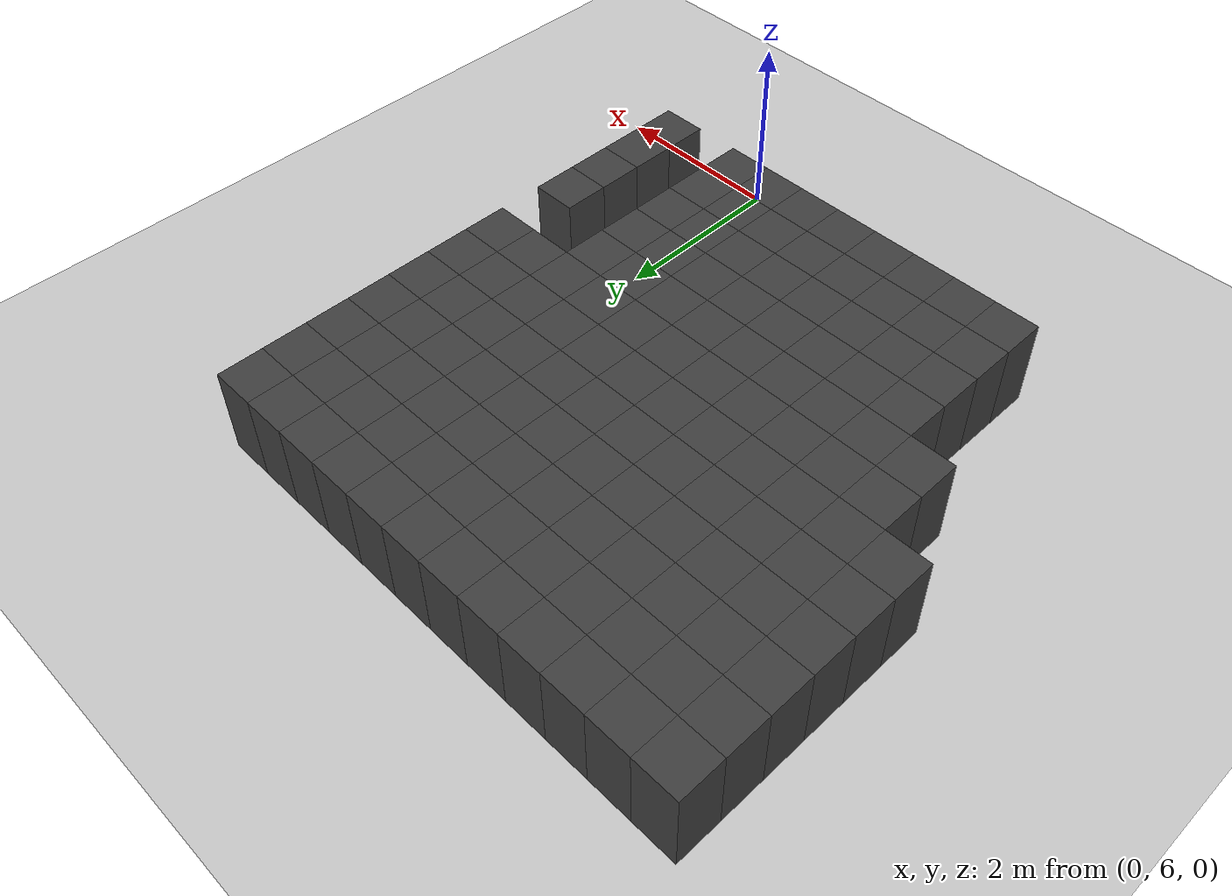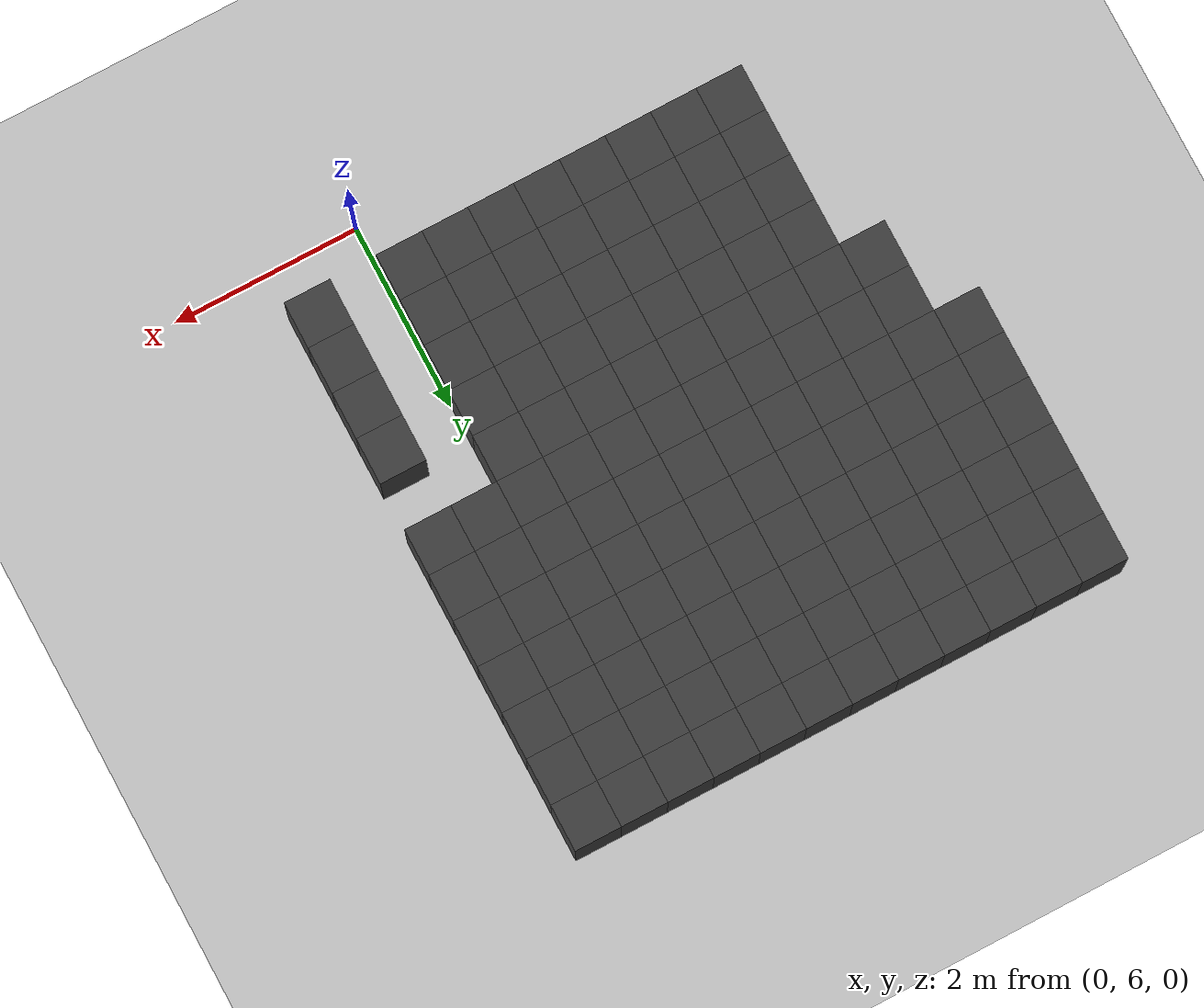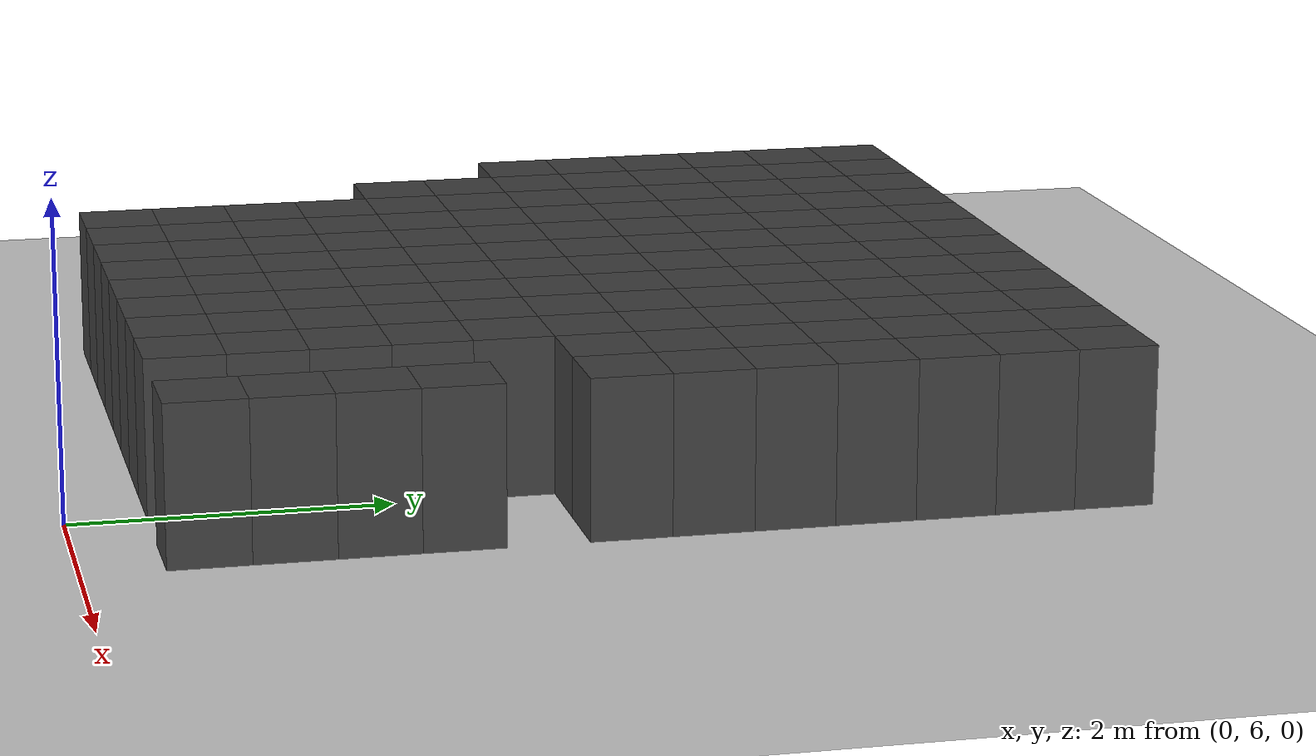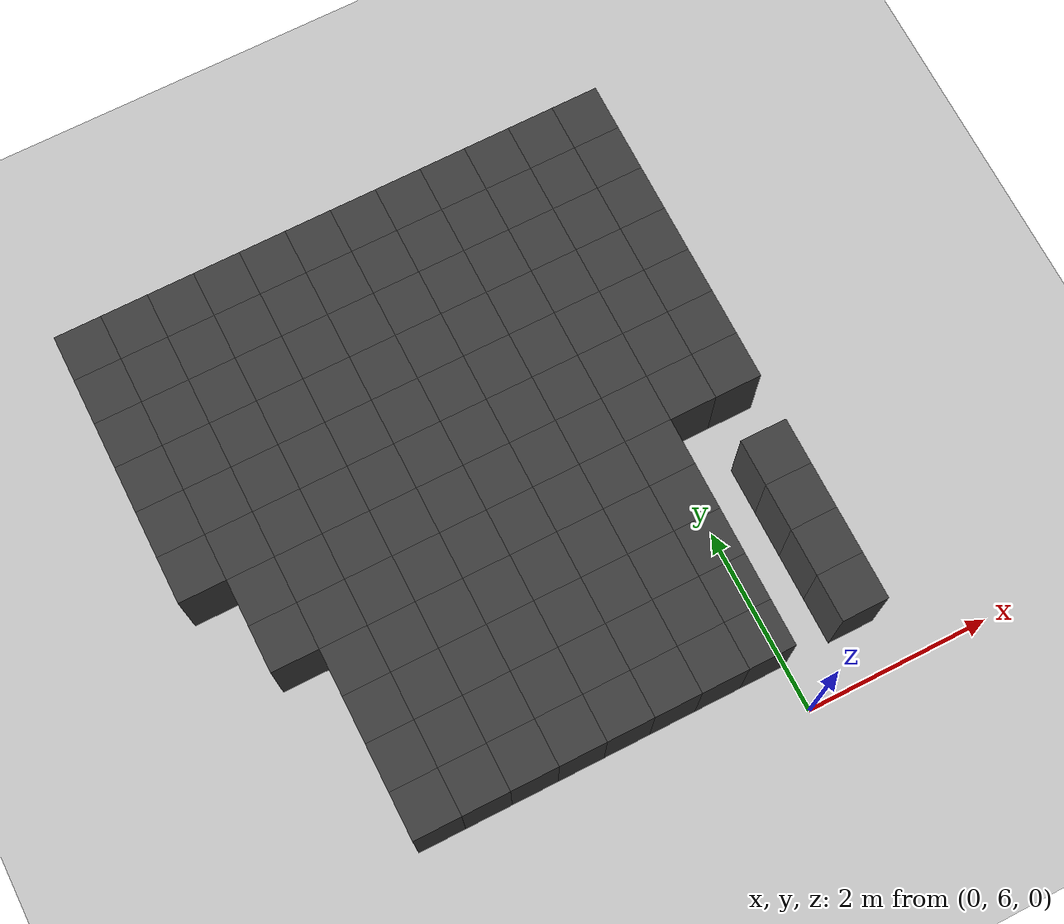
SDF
<sdf version="1.7">
 <world name="map_14980">
  <model name="ground_plane">
   <static>true</static>
   <link name="link">
    <collision name="collision">
     <geometry><plane><normal>0 0 1</normal><size>200 200</size></plane></geometry>
    </collision>
    <visual name="visual">
     <geometry><plane><normal>0 0 1</normal><size>200 200</size></plane></geometry>
     <material><ambient>0.8 0.8 0.8 1</ambient><diffuse>0.8 0.8 0.8 1</diffuse></material>
    </visual>
   </link>
  </model>
  <model name="maze_environment">
   <static>true</static>
   <link name="wall_15">
    <pose>-4.750 12.250 0.500 0 0 0</pose>
    <collision name="col"><geometry><box><size>0.5 0.5 1.0</size></box></geometry></collision>
    <visual name="vis">
     <geometry><box><size>0.5 0.5 1.0</size></box></geometry>
     <material><ambient>0.15 0.15 0.15 1</ambient><diffuse>0.25 0.25 0.25 1</diffuse></material>
    </visual>
   </link>
   <link name="wall_16">
    <pose>-4.250 12.250 0.500 0 0 0</pose>
    <collision name="col"><geometry><box><size>0.5 0.5 1.0</size></box></geometry></collision>
    <visual name="vis">
     <geometry><box><size>0.5 0.5 1.0</size></box></geometry>
     <material><ambient>0.15 0.15 0.15 1</ambient><diffuse>0.25 0.25 0.25 1</diffuse></material>
    </visual>
   </link>
   <link name="wall_17">
    <pose>-3.750 12.250 0.500 0 0 0</pose>
    <collision name="col"><geometry><box><size>0.5 0.5 1.0</size></box></geometry></collision>
    <visual name="vis">
     <geometry><box><size>0.5 0.5 1.0</size></box></geometry>
     <material><ambient>0.15 0.15 0.15 1</ambient><diffuse>0.25 0.25 0.25 1</diffuse></material>
    </visual>
   </link>
   <link name="wall_18">
    <pose>-3.250 12.250 0.500 0 0 0</pose>
    <collision name="col"><geometry><box><size>0.5 0.5 1.0</size></box></geometry></collision>
    <visual name="vis">
     <geometry><box><size>0.5 0.5 1.0</size></box></geometry>
     <material><ambient>0.15 0.15 0.15 1</ambient><diffuse>0.25 0.25 0.25 1</diffuse></material>
    </visual>
   </link>
   <link name="wall_19">
    <pose>-2.750 12.250 0.500 0 0 0</pose>
    <collision name="col"><geometry><box><size>0.5 0.5 1.0</size></box></geometry></collision>
    <visual name="vis">
     <geometry><box><size>0.5 0.5 1.0</size></box></geometry>
     <material><ambient>0.15 0.15 0.15 1</ambient><diffuse>0.25 0.25 0.25 1</diffuse></material>
    </visual>
   </link>
   <link name="wall_20">
    <pose>-2.250 12.250 0.500 0 0 0</pose>
    <collision name="col"><geometry><box><size>0.5 0.5 1.0</size></box></geometry></collision>
    <visual name="vis">
     <geometry><box><size>0.5 0.5 1.0</size></box></geometry>
     <material><ambient>0.15 0.15 0.15 1</ambient><diffuse>0.25 0.25 0.25 1</diffuse></material>
    </visual>
   </link>
   <link name="wall_21">
    <pose>-1.750 12.250 0.500 0 0 0</pose>
    <collision name="col"><geometry><box><size>0.5 0.5 1.0</size></box></geometry></collision>
    <visual name="vis">
     <geometry><box><size>0.5 0.5 1.0</size></box></geometry>
     <material><ambient>0.15 0.15 0.15 1</ambient><diffuse>0.25 0.25 0.25 1</diffuse></material>
    </visual>
   </link>
   <link name="wall_22">
    <pose>-1.250 12.250 0.500 0 0 0</pose>
    <collision name="col"><geometry><box><size>0.5 0.5 1.0</size></box></geometry></collision>
    <visual name="vis">
     <geometry><box><size>0.5 0.5 1.0</size></box></geometry>
     <material><ambient>0.15 0.15 0.15 1</ambient><diffuse>0.25 0.25 0.25 1</diffuse></material>
    </visual>
   </link>
   <link name="wall_23">
    <pose>-0.750 12.250 0.500 0 0 0</pose>
    <collision name="col"><geometry><box><size>0.5 0.5 1.0</size></box></geometry></collision>
    <visual name="vis">
     <geometry><box><size>0.5 0.5 1.0</size></box></geometry>
     <material><ambient>0.15 0.15 0.15 1</ambient><diffuse>0.25 0.25 0.25 1</diffuse></material>
    </visual>
   </link>
   <link name="wall_24">
    <pose>-0.250 12.250 0.500 0 0 0</pose>
    <collision name="col"><geometry><box><size>0.5 0.5 1.0</size></box></geometry></collision>
    <visual name="vis">
     <geometry><box><size>0.5 0.5 1.0</size></box></geometry>
     <material><ambient>0.15 0.15 0.15 1</ambient><diffuse>0.25 0.25 0.25 1</diffuse></material>
    </visual>
   </link>
   <link name="wall_25">
    <pose>0.250 12.250 0.500 0 0 0</pose>
    <collision name="col"><geometry><box><size>0.5 0.5 1.0</size></box></geometry></collision>
    <visual name="vis">
     <geometry><box><size>0.5 0.5 1.0</size></box></geometry>
     <material><ambient>0.15 0.15 0.15 1</ambient><diffuse>0.25 0.25 0.25 1</diffuse></material>
    </visual>
   </link>
   <link name="wall_26">
    <pose>0.750 12.250 0.500 0 0 0</pose>
    <collision name="col"><geometry><box><size>0.5 0.5 1.0</size></box></geometry></collision>
    <visual name="vis">
     <geometry><box><size>0.5 0.5 1.0</size></box></geometry>
     <material><ambient>0.15 0.15 0.15 1</ambient><diffuse>0.25 0.25 0.25 1</diffuse></material>
    </visual>
   </link>
   <link name="wall_62">
    <pose>-4.750 11.750 0.500 0 0 0</pose>
    <collision name="col"><geometry><box><size>0.5 0.5 1.0</size></box></geometry></collision>
    <visual name="vis">
     <geometry><box><size>0.5 0.5 1.0</size></box></geometry>
     <material><ambient>0.15 0.15 0.15 1</ambient><diffuse>0.25 0.25 0.25 1</diffuse></material>
    </visual>
   </link>
   <link name="wall_63">
    <pose>-4.250 11.750 0.500 0 0 0</pose>
    <collision name="col"><geometry><box><size>0.5 0.5 1.0</size></box></geometry></collision>
    <visual name="vis">
     <geometry><box><size>0.5 0.5 1.0</size></box></geometry>
     <material><ambient>0.15 0.15 0.15 1</ambient><diffuse>0.25 0.25 0.25 1</diffuse></material>
    </visual>
   </link>
   <link name="wall_64">
    <pose>-3.750 11.750 0.500 0 0 0</pose>
    <collision name="col"><geometry><box><size>0.5 0.5 1.0</size></box></geometry></collision>
    <visual name="vis">
     <geometry><box><size>0.5 0.5 1.0</size></box></geometry>
     <material><ambient>0.15 0.15 0.15 1</ambient><diffuse>0.25 0.25 0.25 1</diffuse></material>
    </visual>
   </link>
   <link name="wall_65">
    <pose>-3.250 11.750 0.500 0 0 0</pose>
    <collision name="col"><geometry><box><size>0.5 0.5 1.0</size></box></geometry></collision>
    <visual name="vis">
     <geometry><box><size>0.5 0.5 1.0</size></box></geometry>
     <material><ambient>0.15 0.15 0.15 1</ambient><diffuse>0.25 0.25 0.25 1</diffuse></material>
    </visual>
   </link>
   <link name="wall_66">
    <pose>-2.750 11.750 0.500 0 0 0</pose>
    <collision name="col"><geometry><box><size>0.5 0.5 1.0</size></box></geometry></collision>
    <visual name="vis">
     <geometry><box><size>0.5 0.5 1.0</size></box></geometry>
     <material><ambient>0.15 0.15 0.15 1</ambient><diffuse>0.25 0.25 0.25 1</diffuse></material>
    </visual>
   </link>
   <link name="wall_67">
    <pose>-2.250 11.750 0.500 0 0 0</pose>
    <collision name="col"><geometry><box><size>0.5 0.5 1.0</size></box></geometry></collision>
    <visual name="vis">
     <geometry><box><size>0.5 0.5 1.0</size></box></geometry>
     <material><ambient>0.15 0.15 0.15 1</ambient><diffuse>0.25 0.25 0.25 1</diffuse></material>
    </visual>
   </link>
   <link name="wall_68">
    <pose>-1.750 11.750 0.500 0 0 0</pose>
    <collision name="col"><geometry><box><size>0.5 0.5 1.0</size></box></geometry></collision>
    <visual name="vis">
     <geometry><box><size>0.5 0.5 1.0</size></box></geometry>
     <material><ambient>0.15 0.15 0.15 1</ambient><diffuse>0.25 0.25 0.25 1</diffuse></material>
    </visual>
   </link>
   <link name="wall_69">
    <pose>-1.250 11.750 0.500 0 0 0</pose>
    <collision name="col"><geometry><box><size>0.5 0.5 1.0</size></box></geometry></collision>
    <visual name="vis">
     <geometry><box><size>0.5 0.5 1.0</size></box></geometry>
     <material><ambient>0.15 0.15 0.15 1</ambient><diffuse>0.25 0.25 0.25 1</diffuse></material>
    </visual>
   </link>
   <link name="wall_70">
    <pose>-0.750 11.750 0.500 0 0 0</pose>
    <collision name="col"><geometry><box><size>0.5 0.5 1.0</size></box></geometry></collision>
    <visual name="vis">
     <geometry><box><size>0.5 0.5 1.0</size></box></geometry>
     <material><ambient>0.15 0.15 0.15 1</ambient><diffuse>0.25 0.25 0.25 1</diffuse></material>
    </visual>
   </link>
   <link name="wall_71">
    <pose>-0.250 11.750 0.500 0 0 0</pose>
    <collision name="col"><geometry><box><size>0.5 0.5 1.0</size></box></geometry></collision>
    <visual name="vis">
     <geometry><box><size>0.5 0.5 1.0</size></box></geometry>
     <material><ambient>0.15 0.15 0.15 1</ambient><diffuse>0.25 0.25 0.25 1</diffuse></material>
    </visual>
   </link>
   <link name="wall_72">
    <pose>0.250 11.750 0.500 0 0 0</pose>
    <collision name="col"><geometry><box><size>0.5 0.5 1.0</size></box></geometry></collision>
    <visual name="vis">
     <geometry><box><size>0.5 0.5 1.0</size></box></geometry>
     <material><ambient>0.15 0.15 0.15 1</ambient><diffuse>0.25 0.25 0.25 1</diffuse></material>
    </visual>
   </link>
   <link name="wall_73">
    <pose>0.750 11.750 0.500 0 0 0</pose>
    <collision name="col"><geometry><box><size>0.5 0.5 1.0</size></box></geometry></collision>
    <visual name="vis">
     <geometry><box><size>0.5 0.5 1.0</size></box></geometry>
     <material><ambient>0.15 0.15 0.15 1</ambient><diffuse>0.25 0.25 0.25 1</diffuse></material>
    </visual>
   </link>
   <link name="wall_109">
    <pose>-4.750 11.250 0.500 0 0 0</pose>
    <collision name="col"><geometry><box><size>0.5 0.5 1.0</size></box></geometry></collision>
    <visual name="vis">
     <geometry><box><size>0.5 0.5 1.0</size></box></geometry>
     <material><ambient>0.15 0.15 0.15 1</ambient><diffuse>0.25 0.25 0.25 1</diffuse></material>
    </visual>
   </link>
   <link name="wall_110">
    <pose>-4.250 11.250 0.500 0 0 0</pose>
    <collision name="col"><geometry><box><size>0.5 0.5 1.0</size></box></geometry></collision>
    <visual name="vis">
     <geometry><box><size>0.5 0.5 1.0</size></box></geometry>
     <material><ambient>0.15 0.15 0.15 1</ambient><diffuse>0.25 0.25 0.25 1</diffuse></material>
    </visual>
   </link>
   <link name="wall_111">
    <pose>-3.750 11.250 0.500 0 0 0</pose>
    <collision name="col"><geometry><box><size>0.5 0.5 1.0</size></box></geometry></collision>
    <visual name="vis">
     <geometry><box><size>0.5 0.5 1.0</size></box></geometry>
     <material><ambient>0.15 0.15 0.15 1</ambient><diffuse>0.25 0.25 0.25 1</diffuse></material>
    </visual>
   </link>
   <link name="wall_112">
    <pose>-3.250 11.250 0.500 0 0 0</pose>
    <collision name="col"><geometry><box><size>0.5 0.5 1.0</size></box></geometry></collision>
    <visual name="vis">
     <geometry><box><size>0.5 0.5 1.0</size></box></geometry>
     <material><ambient>0.15 0.15 0.15 1</ambient><diffuse>0.25 0.25 0.25 1</diffuse></material>
    </visual>
   </link>
   <link name="wall_113">
    <pose>-2.750 11.250 0.500 0 0 0</pose>
    <collision name="col"><geometry><box><size>0.5 0.5 1.0</size></box></geometry></collision>
    <visual name="vis">
     <geometry><box><size>0.5 0.5 1.0</size></box></geometry>
     <material><ambient>0.15 0.15 0.15 1</ambient><diffuse>0.25 0.25 0.25 1</diffuse></material>
    </visual>
   </link>
   <link name="wall_114">
    <pose>-2.250 11.250 0.500 0 0 0</pose>
    <collision name="col"><geometry><box><size>0.5 0.5 1.0</size></box></geometry></collision>
    <visual name="vis">
     <geometry><box><size>0.5 0.5 1.0</size></box></geometry>
     <material><ambient>0.15 0.15 0.15 1</ambient><diffuse>0.25 0.25 0.25 1</diffuse></material>
    </visual>
   </link>
   <link name="wall_115">
    <pose>-1.750 11.250 0.500 0 0 0</pose>
    <collision name="col"><geometry><box><size>0.5 0.5 1.0</size></box></geometry></collision>
    <visual name="vis">
     <geometry><box><size>0.5 0.5 1.0</size></box></geometry>
     <material><ambient>0.15 0.15 0.15 1</ambient><diffuse>0.25 0.25 0.25 1</diffuse></material>
    </visual>
   </link>
   <link name="wall_116">
    <pose>-1.250 11.250 0.500 0 0 0</pose>
    <collision name="col"><geometry><box><size>0.5 0.5 1.0</size></box></geometry></collision>
    <visual name="vis">
     <geometry><box><size>0.5 0.5 1.0</size></box></geometry>
     <material><ambient>0.15 0.15 0.15 1</ambient><diffuse>0.25 0.25 0.25 1</diffuse></material>
    </visual>
   </link>
   <link name="wall_117">
    <pose>-0.750 11.250 0.500 0 0 0</pose>
    <collision name="col"><geometry><box><size>0.5 0.5 1.0</size></box></geometry></collision>
    <visual name="vis">
     <geometry><box><size>0.5 0.5 1.0</size></box></geometry>
     <material><ambient>0.15 0.15 0.15 1</ambient><diffuse>0.25 0.25 0.25 1</diffuse></material>
    </visual>
   </link>
   <link name="wall_118">
    <pose>-0.250 11.250 0.500 0 0 0</pose>
    <collision name="col"><geometry><box><size>0.5 0.5 1.0</size></box></geometry></collision>
    <visual name="vis">
     <geometry><box><size>0.5 0.5 1.0</size></box></geometry>
     <material><ambient>0.15 0.15 0.15 1</ambient><diffuse>0.25 0.25 0.25 1</diffuse></material>
    </visual>
   </link>
   <link name="wall_119">
    <pose>0.250 11.250 0.500 0 0 0</pose>
    <collision name="col"><geometry><box><size>0.5 0.5 1.0</size></box></geometry></collision>
    <visual name="vis">
     <geometry><box><size>0.5 0.5 1.0</size></box></geometry>
     <material><ambient>0.15 0.15 0.15 1</ambient><diffuse>0.25 0.25 0.25 1</diffuse></material>
    </visual>
   </link>
   <link name="wall_120">
    <pose>0.750 11.250 0.500 0 0 0</pose>
    <collision name="col"><geometry><box><size>0.5 0.5 1.0</size></box></geometry></collision>
    <visual name="vis">
     <geometry><box><size>0.5 0.5 1.0</size></box></geometry>
     <material><ambient>0.15 0.15 0.15 1</ambient><diffuse>0.25 0.25 0.25 1</diffuse></material>
    </visual>
   </link>
   <link name="wall_156">
    <pose>-4.750 10.750 0.500 0 0 0</pose>
    <collision name="col"><geometry><box><size>0.5 0.5 1.0</size></box></geometry></collision>
    <visual name="vis">
     <geometry><box><size>0.5 0.5 1.0</size></box></geometry>
     <material><ambient>0.15 0.15 0.15 1</ambient><diffuse>0.25 0.25 0.25 1</diffuse></material>
    </visual>
   </link>
   <link name="wall_157">
    <pose>-4.250 10.750 0.500 0 0 0</pose>
    <collision name="col"><geometry><box><size>0.5 0.5 1.0</size></box></geometry></collision>
    <visual name="vis">
     <geometry><box><size>0.5 0.5 1.0</size></box></geometry>
     <material><ambient>0.15 0.15 0.15 1</ambient><diffuse>0.25 0.25 0.25 1</diffuse></material>
    </visual>
   </link>
   <link name="wall_158">
    <pose>-3.750 10.750 0.500 0 0 0</pose>
    <collision name="col"><geometry><box><size>0.5 0.5 1.0</size></box></geometry></collision>
    <visual name="vis">
     <geometry><box><size>0.5 0.5 1.0</size></box></geometry>
     <material><ambient>0.15 0.15 0.15 1</ambient><diffuse>0.25 0.25 0.25 1</diffuse></material>
    </visual>
   </link>
   <link name="wall_159">
    <pose>-3.250 10.750 0.500 0 0 0</pose>
    <collision name="col"><geometry><box><size>0.5 0.5 1.0</size></box></geometry></collision>
    <visual name="vis">
     <geometry><box><size>0.5 0.5 1.0</size></box></geometry>
     <material><ambient>0.15 0.15 0.15 1</ambient><diffuse>0.25 0.25 0.25 1</diffuse></material>
    </visual>
   </link>
   <link name="wall_160">
    <pose>-2.750 10.750 0.500 0 0 0</pose>
    <collision name="col"><geometry><box><size>0.5 0.5 1.0</size></box></geometry></collision>
    <visual name="vis">
     <geometry><box><size>0.5 0.5 1.0</size></box></geometry>
     <material><ambient>0.15 0.15 0.15 1</ambient><diffuse>0.25 0.25 0.25 1</diffuse></material>
    </visual>
   </link>
   <link name="wall_161">
    <pose>-2.250 10.750 0.500 0 0 0</pose>
    <collision name="col"><geometry><box><size>0.5 0.5 1.0</size></box></geometry></collision>
    <visual name="vis">
     <geometry><box><size>0.5 0.5 1.0</size></box></geometry>
     <material><ambient>0.15 0.15 0.15 1</ambient><diffuse>0.25 0.25 0.25 1</diffuse></material>
    </visual>
   </link>
   <link name="wall_162">
    <pose>-1.750 10.750 0.500 0 0 0</pose>
    <collision name="col"><geometry><box><size>0.5 0.5 1.0</size></box></geometry></collision>
    <visual name="vis">
     <geometry><box><size>0.5 0.5 1.0</size></box></geometry>
     <material><ambient>0.15 0.15 0.15 1</ambient><diffuse>0.25 0.25 0.25 1</diffuse></material>
    </visual>
   </link>
   <link name="wall_163">
    <pose>-1.250 10.750 0.500 0 0 0</pose>
    <collision name="col"><geometry><box><size>0.5 0.5 1.0</size></box></geometry></collision>
    <visual name="vis">
     <geometry><box><size>0.5 0.5 1.0</size></box></geometry>
     <material><ambient>0.15 0.15 0.15 1</ambient><diffuse>0.25 0.25 0.25 1</diffuse></material>
    </visual>
   </link>
   <link name="wall_164">
    <pose>-0.750 10.750 0.500 0 0 0</pose>
    <collision name="col"><geometry><box><size>0.5 0.5 1.0</size></box></geometry></collision>
    <visual name="vis">
     <geometry><box><size>0.5 0.5 1.0</size></box></geometry>
     <material><ambient>0.15 0.15 0.15 1</ambient><diffuse>0.25 0.25 0.25 1</diffuse></material>
    </visual>
   </link>
   <link name="wall_165">
    <pose>-0.250 10.750 0.500 0 0 0</pose>
    <collision name="col"><geometry><box><size>0.5 0.5 1.0</size></box></geometry></collision>
    <visual name="vis">
     <geometry><box><size>0.5 0.5 1.0</size></box></geometry>
     <material><ambient>0.15 0.15 0.15 1</ambient><diffuse>0.25 0.25 0.25 1</diffuse></material>
    </visual>
   </link>
   <link name="wall_166">
    <pose>0.250 10.750 0.500 0 0 0</pose>
    <collision name="col"><geometry><box><size>0.5 0.5 1.0</size></box></geometry></collision>
    <visual name="vis">
     <geometry><box><size>0.5 0.5 1.0</size></box></geometry>
     <material><ambient>0.15 0.15 0.15 1</ambient><diffuse>0.25 0.25 0.25 1</diffuse></material>
    </visual>
   </link>
   <link name="wall_167">
    <pose>0.750 10.750 0.500 0 0 0</pose>
    <collision name="col"><geometry><box><size>0.5 0.5 1.0</size></box></geometry></collision>
    <visual name="vis">
     <geometry><box><size>0.5 0.5 1.0</size></box></geometry>
     <material><ambient>0.15 0.15 0.15 1</ambient><diffuse>0.25 0.25 0.25 1</diffuse></material>
    </visual>
   </link>
   <link name="wall_199">
    <pose>-4.750 10.250 0.500 0 0 0</pose>
    <collision name="col"><geometry><box><size>0.5 0.5 1.0</size></box></geometry></collision>
    <visual name="vis">
     <geometry><box><size>0.5 0.5 1.0</size></box></geometry>
     <material><ambient>0.15 0.15 0.15 1</ambient><diffuse>0.25 0.25 0.25 1</diffuse></material>
    </visual>
   </link>
   <link name="wall_200">
    <pose>-4.250 10.250 0.500 0 0 0</pose>
    <collision name="col"><geometry><box><size>0.5 0.5 1.0</size></box></geometry></collision>
    <visual name="vis">
     <geometry><box><size>0.5 0.5 1.0</size></box></geometry>
     <material><ambient>0.15 0.15 0.15 1</ambient><diffuse>0.25 0.25 0.25 1</diffuse></material>
    </visual>
   </link>
   <link name="wall_201">
    <pose>-3.750 10.250 0.500 0 0 0</pose>
    <collision name="col"><geometry><box><size>0.5 0.5 1.0</size></box></geometry></collision>
    <visual name="vis">
     <geometry><box><size>0.5 0.5 1.0</size></box></geometry>
     <material><ambient>0.15 0.15 0.15 1</ambient><diffuse>0.25 0.25 0.25 1</diffuse></material>
    </visual>
   </link>
   <link name="wall_202">
    <pose>-3.250 10.250 0.500 0 0 0</pose>
    <collision name="col"><geometry><box><size>0.5 0.5 1.0</size></box></geometry></collision>
    <visual name="vis">
     <geometry><box><size>0.5 0.5 1.0</size></box></geometry>
     <material><ambient>0.15 0.15 0.15 1</ambient><diffuse>0.25 0.25 0.25 1</diffuse></material>
    </visual>
   </link>
   <link name="wall_203">
    <pose>-2.750 10.250 0.500 0 0 0</pose>
    <collision name="col"><geometry><box><size>0.5 0.5 1.0</size></box></geometry></collision>
    <visual name="vis">
     <geometry><box><size>0.5 0.5 1.0</size></box></geometry>
     <material><ambient>0.15 0.15 0.15 1</ambient><diffuse>0.25 0.25 0.25 1</diffuse></material>
    </visual>
   </link>
   <link name="wall_204">
    <pose>-2.250 10.250 0.500 0 0 0</pose>
    <collision name="col"><geometry><box><size>0.5 0.5 1.0</size></box></geometry></collision>
    <visual name="vis">
     <geometry><box><size>0.5 0.5 1.0</size></box></geometry>
     <material><ambient>0.15 0.15 0.15 1</ambient><diffuse>0.25 0.25 0.25 1</diffuse></material>
    </visual>
   </link>
   <link name="wall_205">
    <pose>-1.750 10.250 0.500 0 0 0</pose>
    <collision name="col"><geometry><box><size>0.5 0.5 1.0</size></box></geometry></collision>
    <visual name="vis">
     <geometry><box><size>0.5 0.5 1.0</size></box></geometry>
     <material><ambient>0.15 0.15 0.15 1</ambient><diffuse>0.25 0.25 0.25 1</diffuse></material>
    </visual>
   </link>
   <link name="wall_206">
    <pose>-1.250 10.250 0.500 0 0 0</pose>
    <collision name="col"><geometry><box><size>0.5 0.5 1.0</size></box></geometry></collision>
    <visual name="vis">
     <geometry><box><size>0.5 0.5 1.0</size></box></geometry>
     <material><ambient>0.15 0.15 0.15 1</ambient><diffuse>0.25 0.25 0.25 1</diffuse></material>
    </visual>
   </link>
   <link name="wall_207">
    <pose>-0.750 10.250 0.500 0 0 0</pose>
    <collision name="col"><geometry><box><size>0.5 0.5 1.0</size></box></geometry></collision>
    <visual name="vis">
     <geometry><box><size>0.5 0.5 1.0</size></box></geometry>
     <material><ambient>0.15 0.15 0.15 1</ambient><diffuse>0.25 0.25 0.25 1</diffuse></material>
    </visual>
   </link>
   <link name="wall_208">
    <pose>-0.250 10.250 0.500 0 0 0</pose>
    <collision name="col"><geometry><box><size>0.5 0.5 1.0</size></box></geometry></collision>
    <visual name="vis">
     <geometry><box><size>0.5 0.5 1.0</size></box></geometry>
     <material><ambient>0.15 0.15 0.15 1</ambient><diffuse>0.25 0.25 0.25 1</diffuse></material>
    </visual>
   </link>
   <link name="wall_209">
    <pose>0.250 10.250 0.500 0 0 0</pose>
    <collision name="col"><geometry><box><size>0.5 0.5 1.0</size></box></geometry></collision>
    <visual name="vis">
     <geometry><box><size>0.5 0.5 1.0</size></box></geometry>
     <material><ambient>0.15 0.15 0.15 1</ambient><diffuse>0.25 0.25 0.25 1</diffuse></material>
    </visual>
   </link>
   <link name="wall_210">
    <pose>0.750 10.250 0.500 0 0 0</pose>
    <collision name="col"><geometry><box><size>0.5 0.5 1.0</size></box></geometry></collision>
    <visual name="vis">
     <geometry><box><size>0.5 0.5 1.0</size></box></geometry>
     <material><ambient>0.15 0.15 0.15 1</ambient><diffuse>0.25 0.25 0.25 1</diffuse></material>
    </visual>
   </link>
   <link name="wall_242">
    <pose>-4.750 9.750 0.500 0 0 0</pose>
    <collision name="col"><geometry><box><size>0.5 0.5 1.0</size></box></geometry></collision>
    <visual name="vis">
     <geometry><box><size>0.5 0.5 1.0</size></box></geometry>
     <material><ambient>0.15 0.15 0.15 1</ambient><diffuse>0.25 0.25 0.25 1</diffuse></material>
    </visual>
   </link>
   <link name="wall_243">
    <pose>-4.250 9.750 0.500 0 0 0</pose>
    <collision name="col"><geometry><box><size>0.5 0.5 1.0</size></box></geometry></collision>
    <visual name="vis">
     <geometry><box><size>0.5 0.5 1.0</size></box></geometry>
     <material><ambient>0.15 0.15 0.15 1</ambient><diffuse>0.25 0.25 0.25 1</diffuse></material>
    </visual>
   </link>
   <link name="wall_244">
    <pose>-3.750 9.750 0.500 0 0 0</pose>
    <collision name="col"><geometry><box><size>0.5 0.5 1.0</size></box></geometry></collision>
    <visual name="vis">
     <geometry><box><size>0.5 0.5 1.0</size></box></geometry>
     <material><ambient>0.15 0.15 0.15 1</ambient><diffuse>0.25 0.25 0.25 1</diffuse></material>
    </visual>
   </link>
   <link name="wall_245">
    <pose>-3.250 9.750 0.500 0 0 0</pose>
    <collision name="col"><geometry><box><size>0.5 0.5 1.0</size></box></geometry></collision>
    <visual name="vis">
     <geometry><box><size>0.5 0.5 1.0</size></box></geometry>
     <material><ambient>0.15 0.15 0.15 1</ambient><diffuse>0.25 0.25 0.25 1</diffuse></material>
    </visual>
   </link>
   <link name="wall_246">
    <pose>-2.750 9.750 0.500 0 0 0</pose>
    <collision name="col"><geometry><box><size>0.5 0.5 1.0</size></box></geometry></collision>
    <visual name="vis">
     <geometry><box><size>0.5 0.5 1.0</size></box></geometry>
     <material><ambient>0.15 0.15 0.15 1</ambient><diffuse>0.25 0.25 0.25 1</diffuse></material>
    </visual>
   </link>
   <link name="wall_247">
    <pose>-2.250 9.750 0.500 0 0 0</pose>
    <collision name="col"><geometry><box><size>0.5 0.5 1.0</size></box></geometry></collision>
    <visual name="vis">
     <geometry><box><size>0.5 0.5 1.0</size></box></geometry>
     <material><ambient>0.15 0.15 0.15 1</ambient><diffuse>0.25 0.25 0.25 1</diffuse></material>
    </visual>
   </link>
   <link name="wall_248">
    <pose>-1.750 9.750 0.500 0 0 0</pose>
    <collision name="col"><geometry><box><size>0.5 0.5 1.0</size></box></geometry></collision>
    <visual name="vis">
     <geometry><box><size>0.5 0.5 1.0</size></box></geometry>
     <material><ambient>0.15 0.15 0.15 1</ambient><diffuse>0.25 0.25 0.25 1</diffuse></material>
    </visual>
   </link>
   <link name="wall_249">
    <pose>-1.250 9.750 0.500 0 0 0</pose>
    <collision name="col"><geometry><box><size>0.5 0.5 1.0</size></box></geometry></collision>
    <visual name="vis">
     <geometry><box><size>0.5 0.5 1.0</size></box></geometry>
     <material><ambient>0.15 0.15 0.15 1</ambient><diffuse>0.25 0.25 0.25 1</diffuse></material>
    </visual>
   </link>
   <link name="wall_250">
    <pose>-0.750 9.750 0.500 0 0 0</pose>
    <collision name="col"><geometry><box><size>0.5 0.5 1.0</size></box></geometry></collision>
    <visual name="vis">
     <geometry><box><size>0.5 0.5 1.0</size></box></geometry>
     <material><ambient>0.15 0.15 0.15 1</ambient><diffuse>0.25 0.25 0.25 1</diffuse></material>
    </visual>
   </link>
   <link name="wall_251">
    <pose>-0.250 9.750 0.500 0 0 0</pose>
    <collision name="col"><geometry><box><size>0.5 0.5 1.0</size></box></geometry></collision>
    <visual name="vis">
     <geometry><box><size>0.5 0.5 1.0</size></box></geometry>
     <material><ambient>0.15 0.15 0.15 1</ambient><diffuse>0.25 0.25 0.25 1</diffuse></material>
    </visual>
   </link>
   <link name="wall_252">
    <pose>0.250 9.750 0.500 0 0 0</pose>
    <collision name="col"><geometry><box><size>0.5 0.5 1.0</size></box></geometry></collision>
    <visual name="vis">
     <geometry><box><size>0.5 0.5 1.0</size></box></geometry>
     <material><ambient>0.15 0.15 0.15 1</ambient><diffuse>0.25 0.25 0.25 1</diffuse></material>
    </visual>
   </link>
   <link name="wall_253">
    <pose>0.750 9.750 0.500 0 0 0</pose>
    <collision name="col"><geometry><box><size>0.5 0.5 1.0</size></box></geometry></collision>
    <visual name="vis">
     <geometry><box><size>0.5 0.5 1.0</size></box></geometry>
     <material><ambient>0.15 0.15 0.15 1</ambient><diffuse>0.25 0.25 0.25 1</diffuse></material>
    </visual>
   </link>
   <link name="wall_281">
    <pose>-4.250 9.250 0.500 0 0 0</pose>
    <collision name="col"><geometry><box><size>0.5 0.5 1.0</size></box></geometry></collision>
    <visual name="vis">
     <geometry><box><size>0.5 0.5 1.0</size></box></geometry>
     <material><ambient>0.15 0.15 0.15 1</ambient><diffuse>0.25 0.25 0.25 1</diffuse></material>
    </visual>
   </link>
   <link name="wall_282">
    <pose>-3.750 9.250 0.500 0 0 0</pose>
    <collision name="col"><geometry><box><size>0.5 0.5 1.0</size></box></geometry></collision>
    <visual name="vis">
     <geometry><box><size>0.5 0.5 1.0</size></box></geometry>
     <material><ambient>0.15 0.15 0.15 1</ambient><diffuse>0.25 0.25 0.25 1</diffuse></material>
    </visual>
   </link>
   <link name="wall_283">
    <pose>-3.250 9.250 0.500 0 0 0</pose>
    <collision name="col"><geometry><box><size>0.5 0.5 1.0</size></box></geometry></collision>
    <visual name="vis">
     <geometry><box><size>0.5 0.5 1.0</size></box></geometry>
     <material><ambient>0.15 0.15 0.15 1</ambient><diffuse>0.25 0.25 0.25 1</diffuse></material>
    </visual>
   </link>
   <link name="wall_284">
    <pose>-2.750 9.250 0.500 0 0 0</pose>
    <collision name="col"><geometry><box><size>0.5 0.5 1.0</size></box></geometry></collision>
    <visual name="vis">
     <geometry><box><size>0.5 0.5 1.0</size></box></geometry>
     <material><ambient>0.15 0.15 0.15 1</ambient><diffuse>0.25 0.25 0.25 1</diffuse></material>
    </visual>
   </link>
   <link name="wall_285">
    <pose>-2.250 9.250 0.500 0 0 0</pose>
    <collision name="col"><geometry><box><size>0.5 0.5 1.0</size></box></geometry></collision>
    <visual name="vis">
     <geometry><box><size>0.5 0.5 1.0</size></box></geometry>
     <material><ambient>0.15 0.15 0.15 1</ambient><diffuse>0.25 0.25 0.25 1</diffuse></material>
    </visual>
   </link>
   <link name="wall_286">
    <pose>-1.750 9.250 0.500 0 0 0</pose>
    <collision name="col"><geometry><box><size>0.5 0.5 1.0</size></box></geometry></collision>
    <visual name="vis">
     <geometry><box><size>0.5 0.5 1.0</size></box></geometry>
     <material><ambient>0.15 0.15 0.15 1</ambient><diffuse>0.25 0.25 0.25 1</diffuse></material>
    </visual>
   </link>
   <link name="wall_287">
    <pose>-1.250 9.250 0.500 0 0 0</pose>
    <collision name="col"><geometry><box><size>0.5 0.5 1.0</size></box></geometry></collision>
    <visual name="vis">
     <geometry><box><size>0.5 0.5 1.0</size></box></geometry>
     <material><ambient>0.15 0.15 0.15 1</ambient><diffuse>0.25 0.25 0.25 1</diffuse></material>
    </visual>
   </link>
   <link name="wall_288">
    <pose>-0.750 9.250 0.500 0 0 0</pose>
    <collision name="col"><geometry><box><size>0.5 0.5 1.0</size></box></geometry></collision>
    <visual name="vis">
     <geometry><box><size>0.5 0.5 1.0</size></box></geometry>
     <material><ambient>0.15 0.15 0.15 1</ambient><diffuse>0.25 0.25 0.25 1</diffuse></material>
    </visual>
   </link>
   <link name="wall_289">
    <pose>-0.250 9.250 0.500 0 0 0</pose>
    <collision name="col"><geometry><box><size>0.5 0.5 1.0</size></box></geometry></collision>
    <visual name="vis">
     <geometry><box><size>0.5 0.5 1.0</size></box></geometry>
     <material><ambient>0.15 0.15 0.15 1</ambient><diffuse>0.25 0.25 0.25 1</diffuse></material>
    </visual>
   </link>
   <link name="wall_290">
    <pose>0.250 9.250 0.500 0 0 0</pose>
    <collision name="col"><geometry><box><size>0.5 0.5 1.0</size></box></geometry></collision>
    <visual name="vis">
     <geometry><box><size>0.5 0.5 1.0</size></box></geometry>
     <material><ambient>0.15 0.15 0.15 1</ambient><diffuse>0.25 0.25 0.25 1</diffuse></material>
    </visual>
   </link>
   <link name="wall_291">
    <pose>0.750 9.250 0.500 0 0 0</pose>
    <collision name="col"><geometry><box><size>0.5 0.5 1.0</size></box></geometry></collision>
    <visual name="vis">
     <geometry><box><size>0.5 0.5 1.0</size></box></geometry>
     <material><ambient>0.15 0.15 0.15 1</ambient><diffuse>0.25 0.25 0.25 1</diffuse></material>
    </visual>
   </link>
   <link name="wall_319">
    <pose>-4.250 8.750 0.500 0 0 0</pose>
    <collision name="col"><geometry><box><size>0.5 0.5 1.0</size></box></geometry></collision>
    <visual name="vis">
     <geometry><box><size>0.5 0.5 1.0</size></box></geometry>
     <material><ambient>0.15 0.15 0.15 1</ambient><diffuse>0.25 0.25 0.25 1</diffuse></material>
    </visual>
   </link>
   <link name="wall_320">
    <pose>-3.750 8.750 0.500 0 0 0</pose>
    <collision name="col"><geometry><box><size>0.5 0.5 1.0</size></box></geometry></collision>
    <visual name="vis">
     <geometry><box><size>0.5 0.5 1.0</size></box></geometry>
     <material><ambient>0.15 0.15 0.15 1</ambient><diffuse>0.25 0.25 0.25 1</diffuse></material>
    </visual>
   </link>
   <link name="wall_321">
    <pose>-3.250 8.750 0.500 0 0 0</pose>
    <collision name="col"><geometry><box><size>0.5 0.5 1.0</size></box></geometry></collision>
    <visual name="vis">
     <geometry><box><size>0.5 0.5 1.0</size></box></geometry>
     <material><ambient>0.15 0.15 0.15 1</ambient><diffuse>0.25 0.25 0.25 1</diffuse></material>
    </visual>
   </link>
   <link name="wall_322">
    <pose>-2.750 8.750 0.500 0 0 0</pose>
    <collision name="col"><geometry><box><size>0.5 0.5 1.0</size></box></geometry></collision>
    <visual name="vis">
     <geometry><box><size>0.5 0.5 1.0</size></box></geometry>
     <material><ambient>0.15 0.15 0.15 1</ambient><diffuse>0.25 0.25 0.25 1</diffuse></material>
    </visual>
   </link>
   <link name="wall_323">
    <pose>-2.250 8.750 0.500 0 0 0</pose>
    <collision name="col"><geometry><box><size>0.5 0.5 1.0</size></box></geometry></collision>
    <visual name="vis">
     <geometry><box><size>0.5 0.5 1.0</size></box></geometry>
     <material><ambient>0.15 0.15 0.15 1</ambient><diffuse>0.25 0.25 0.25 1</diffuse></material>
    </visual>
   </link>
   <link name="wall_324">
    <pose>-1.750 8.750 0.500 0 0 0</pose>
    <collision name="col"><geometry><box><size>0.5 0.5 1.0</size></box></geometry></collision>
    <visual name="vis">
     <geometry><box><size>0.5 0.5 1.0</size></box></geometry>
     <material><ambient>0.15 0.15 0.15 1</ambient><diffuse>0.25 0.25 0.25 1</diffuse></material>
    </visual>
   </link>
   <link name="wall_325">
    <pose>-1.250 8.750 0.500 0 0 0</pose>
    <collision name="col"><geometry><box><size>0.5 0.5 1.0</size></box></geometry></collision>
    <visual name="vis">
     <geometry><box><size>0.5 0.5 1.0</size></box></geometry>
     <material><ambient>0.15 0.15 0.15 1</ambient><diffuse>0.25 0.25 0.25 1</diffuse></material>
    </visual>
   </link>
   <link name="wall_326">
    <pose>-0.750 8.750 0.500 0 0 0</pose>
    <collision name="col"><geometry><box><size>0.5 0.5 1.0</size></box></geometry></collision>
    <visual name="vis">
     <geometry><box><size>0.5 0.5 1.0</size></box></geometry>
     <material><ambient>0.15 0.15 0.15 1</ambient><diffuse>0.25 0.25 0.25 1</diffuse></material>
    </visual>
   </link>
   <link name="wall_327">
    <pose>-0.250 8.750 0.500 0 0 0</pose>
    <collision name="col"><geometry><box><size>0.5 0.5 1.0</size></box></geometry></collision>
    <visual name="vis">
     <geometry><box><size>0.5 0.5 1.0</size></box></geometry>
     <material><ambient>0.15 0.15 0.15 1</ambient><diffuse>0.25 0.25 0.25 1</diffuse></material>
    </visual>
   </link>
   <link name="wall_347">
    <pose>-3.750 8.250 0.500 0 0 0</pose>
    <collision name="col"><geometry><box><size>0.5 0.5 1.0</size></box></geometry></collision>
    <visual name="vis">
     <geometry><box><size>0.5 0.5 1.0</size></box></geometry>
     <material><ambient>0.15 0.15 0.15 1</ambient><diffuse>0.25 0.25 0.25 1</diffuse></material>
    </visual>
   </link>
   <link name="wall_348">
    <pose>-3.250 8.250 0.500 0 0 0</pose>
    <collision name="col"><geometry><box><size>0.5 0.5 1.0</size></box></geometry></collision>
    <visual name="vis">
     <geometry><box><size>0.5 0.5 1.0</size></box></geometry>
     <material><ambient>0.15 0.15 0.15 1</ambient><diffuse>0.25 0.25 0.25 1</diffuse></material>
    </visual>
   </link>
   <link name="wall_349">
    <pose>-2.750 8.250 0.500 0 0 0</pose>
    <collision name="col"><geometry><box><size>0.5 0.5 1.0</size></box></geometry></collision>
    <visual name="vis">
     <geometry><box><size>0.5 0.5 1.0</size></box></geometry>
     <material><ambient>0.15 0.15 0.15 1</ambient><diffuse>0.25 0.25 0.25 1</diffuse></material>
    </visual>
   </link>
   <link name="wall_350">
    <pose>-2.250 8.250 0.500 0 0 0</pose>
    <collision name="col"><geometry><box><size>0.5 0.5 1.0</size></box></geometry></collision>
    <visual name="vis">
     <geometry><box><size>0.5 0.5 1.0</size></box></geometry>
     <material><ambient>0.15 0.15 0.15 1</ambient><diffuse>0.25 0.25 0.25 1</diffuse></material>
    </visual>
   </link>
   <link name="wall_351">
    <pose>-1.750 8.250 0.500 0 0 0</pose>
    <collision name="col"><geometry><box><size>0.5 0.5 1.0</size></box></geometry></collision>
    <visual name="vis">
     <geometry><box><size>0.5 0.5 1.0</size></box></geometry>
     <material><ambient>0.15 0.15 0.15 1</ambient><diffuse>0.25 0.25 0.25 1</diffuse></material>
    </visual>
   </link>
   <link name="wall_352">
    <pose>-1.250 8.250 0.500 0 0 0</pose>
    <collision name="col"><geometry><box><size>0.5 0.5 1.0</size></box></geometry></collision>
    <visual name="vis">
     <geometry><box><size>0.5 0.5 1.0</size></box></geometry>
     <material><ambient>0.15 0.15 0.15 1</ambient><diffuse>0.25 0.25 0.25 1</diffuse></material>
    </visual>
   </link>
   <link name="wall_353">
    <pose>-0.750 8.250 0.500 0 0 0</pose>
    <collision name="col"><geometry><box><size>0.5 0.5 1.0</size></box></geometry></collision>
    <visual name="vis">
     <geometry><box><size>0.5 0.5 1.0</size></box></geometry>
     <material><ambient>0.15 0.15 0.15 1</ambient><diffuse>0.25 0.25 0.25 1</diffuse></material>
    </visual>
   </link>
   <link name="wall_354">
    <pose>-0.250 8.250 0.500 0 0 0</pose>
    <collision name="col"><geometry><box><size>0.5 0.5 1.0</size></box></geometry></collision>
    <visual name="vis">
     <geometry><box><size>0.5 0.5 1.0</size></box></geometry>
     <material><ambient>0.15 0.15 0.15 1</ambient><diffuse>0.25 0.25 0.25 1</diffuse></material>
    </visual>
   </link>
   <link name="wall_355">
    <pose>0.750 8.250 0.500 0 0 0</pose>
    <collision name="col"><geometry><box><size>0.5 0.5 1.0</size></box></geometry></collision>
    <visual name="vis">
     <geometry><box><size>0.5 0.5 1.0</size></box></geometry>
     <material><ambient>0.15 0.15 0.15 1</ambient><diffuse>0.25 0.25 0.25 1</diffuse></material>
    </visual>
   </link>
   <link name="wall_376">
    <pose>-3.750 7.750 0.500 0 0 0</pose>
    <collision name="col"><geometry><box><size>0.5 0.5 1.0</size></box></geometry></collision>
    <visual name="vis">
     <geometry><box><size>0.5 0.5 1.0</size></box></geometry>
     <material><ambient>0.15 0.15 0.15 1</ambient><diffuse>0.25 0.25 0.25 1</diffuse></material>
    </visual>
   </link>
   <link name="wall_377">
    <pose>-3.250 7.750 0.500 0 0 0</pose>
    <collision name="col"><geometry><box><size>0.5 0.5 1.0</size></box></geometry></collision>
    <visual name="vis">
     <geometry><box><size>0.5 0.5 1.0</size></box></geometry>
     <material><ambient>0.15 0.15 0.15 1</ambient><diffuse>0.25 0.25 0.25 1</diffuse></material>
    </visual>
   </link>
   <link name="wall_378">
    <pose>-2.750 7.750 0.500 0 0 0</pose>
    <collision name="col"><geometry><box><size>0.5 0.5 1.0</size></box></geometry></collision>
    <visual name="vis">
     <geometry><box><size>0.5 0.5 1.0</size></box></geometry>
     <material><ambient>0.15 0.15 0.15 1</ambient><diffuse>0.25 0.25 0.25 1</diffuse></material>
    </visual>
   </link>
   <link name="wall_379">
    <pose>-2.250 7.750 0.500 0 0 0</pose>
    <collision name="col"><geometry><box><size>0.5 0.5 1.0</size></box></geometry></collision>
    <visual name="vis">
     <geometry><box><size>0.5 0.5 1.0</size></box></geometry>
     <material><ambient>0.15 0.15 0.15 1</ambient><diffuse>0.25 0.25 0.25 1</diffuse></material>
    </visual>
   </link>
   <link name="wall_380">
    <pose>-1.750 7.750 0.500 0 0 0</pose>
    <collision name="col"><geometry><box><size>0.5 0.5 1.0</size></box></geometry></collision>
    <visual name="vis">
     <geometry><box><size>0.5 0.5 1.0</size></box></geometry>
     <material><ambient>0.15 0.15 0.15 1</ambient><diffuse>0.25 0.25 0.25 1</diffuse></material>
    </visual>
   </link>
   <link name="wall_381">
    <pose>-1.250 7.750 0.500 0 0 0</pose>
    <collision name="col"><geometry><box><size>0.5 0.5 1.0</size></box></geometry></collision>
    <visual name="vis">
     <geometry><box><size>0.5 0.5 1.0</size></box></geometry>
     <material><ambient>0.15 0.15 0.15 1</ambient><diffuse>0.25 0.25 0.25 1</diffuse></material>
    </visual>
   </link>
   <link name="wall_382">
    <pose>-0.750 7.750 0.500 0 0 0</pose>
    <collision name="col"><geometry><box><size>0.5 0.5 1.0</size></box></geometry></collision>
    <visual name="vis">
     <geometry><box><size>0.5 0.5 1.0</size></box></geometry>
     <material><ambient>0.15 0.15 0.15 1</ambient><diffuse>0.25 0.25 0.25 1</diffuse></material>
    </visual>
   </link>
   <link name="wall_383">
    <pose>-0.250 7.750 0.500 0 0 0</pose>
    <collision name="col"><geometry><box><size>0.5 0.5 1.0</size></box></geometry></collision>
    <visual name="vis">
     <geometry><box><size>0.5 0.5 1.0</size></box></geometry>
     <material><ambient>0.15 0.15 0.15 1</ambient><diffuse>0.25 0.25 0.25 1</diffuse></material>
    </visual>
   </link>
   <link name="wall_384">
    <pose>0.750 7.750 0.500 0 0 0</pose>
    <collision name="col"><geometry><box><size>0.5 0.5 1.0</size></box></geometry></collision>
    <visual name="vis">
     <geometry><box><size>0.5 0.5 1.0</size></box></geometry>
     <material><ambient>0.15 0.15 0.15 1</ambient><diffuse>0.25 0.25 0.25 1</diffuse></material>
    </visual>
   </link>
   <link name="wall_399">
    <pose>-3.750 7.250 0.500 0 0 0</pose>
    <collision name="col"><geometry><box><size>0.5 0.5 1.0</size></box></geometry></collision>
    <visual name="vis">
     <geometry><box><size>0.5 0.5 1.0</size></box></geometry>
     <material><ambient>0.15 0.15 0.15 1</ambient><diffuse>0.25 0.25 0.25 1</diffuse></material>
    </visual>
   </link>
   <link name="wall_400">
    <pose>-3.250 7.250 0.500 0 0 0</pose>
    <collision name="col"><geometry><box><size>0.5 0.5 1.0</size></box></geometry></collision>
    <visual name="vis">
     <geometry><box><size>0.5 0.5 1.0</size></box></geometry>
     <material><ambient>0.15 0.15 0.15 1</ambient><diffuse>0.25 0.25 0.25 1</diffuse></material>
    </visual>
   </link>
   <link name="wall_401">
    <pose>-2.750 7.250 0.500 0 0 0</pose>
    <collision name="col"><geometry><box><size>0.5 0.5 1.0</size></box></geometry></collision>
    <visual name="vis">
     <geometry><box><size>0.5 0.5 1.0</size></box></geometry>
     <material><ambient>0.15 0.15 0.15 1</ambient><diffuse>0.25 0.25 0.25 1</diffuse></material>
    </visual>
   </link>
   <link name="wall_402">
    <pose>-2.250 7.250 0.500 0 0 0</pose>
    <collision name="col"><geometry><box><size>0.5 0.5 1.0</size></box></geometry></collision>
    <visual name="vis">
     <geometry><box><size>0.5 0.5 1.0</size></box></geometry>
     <material><ambient>0.15 0.15 0.15 1</ambient><diffuse>0.25 0.25 0.25 1</diffuse></material>
    </visual>
   </link>
   <link name="wall_403">
    <pose>-1.750 7.250 0.500 0 0 0</pose>
    <collision name="col"><geometry><box><size>0.5 0.5 1.0</size></box></geometry></collision>
    <visual name="vis">
     <geometry><box><size>0.5 0.5 1.0</size></box></geometry>
     <material><ambient>0.15 0.15 0.15 1</ambient><diffuse>0.25 0.25 0.25 1</diffuse></material>
    </visual>
   </link>
   <link name="wall_404">
    <pose>-1.250 7.250 0.500 0 0 0</pose>
    <collision name="col"><geometry><box><size>0.5 0.5 1.0</size></box></geometry></collision>
    <visual name="vis">
     <geometry><box><size>0.5 0.5 1.0</size></box></geometry>
     <material><ambient>0.15 0.15 0.15 1</ambient><diffuse>0.25 0.25 0.25 1</diffuse></material>
    </visual>
   </link>
   <link name="wall_405">
    <pose>-0.750 7.250 0.500 0 0 0</pose>
    <collision name="col"><geometry><box><size>0.5 0.5 1.0</size></box></geometry></collision>
    <visual name="vis">
     <geometry><box><size>0.5 0.5 1.0</size></box></geometry>
     <material><ambient>0.15 0.15 0.15 1</ambient><diffuse>0.25 0.25 0.25 1</diffuse></material>
    </visual>
   </link>
   <link name="wall_406">
    <pose>-0.250 7.250 0.500 0 0 0</pose>
    <collision name="col"><geometry><box><size>0.5 0.5 1.0</size></box></geometry></collision>
    <visual name="vis">
     <geometry><box><size>0.5 0.5 1.0</size></box></geometry>
     <material><ambient>0.15 0.15 0.15 1</ambient><diffuse>0.25 0.25 0.25 1</diffuse></material>
    </visual>
   </link>
   <link name="wall_407">
    <pose>0.750 7.250 0.500 0 0 0</pose>
    <collision name="col"><geometry><box><size>0.5 0.5 1.0</size></box></geometry></collision>
    <visual name="vis">
     <geometry><box><size>0.5 0.5 1.0</size></box></geometry>
     <material><ambient>0.15 0.15 0.15 1</ambient><diffuse>0.25 0.25 0.25 1</diffuse></material>
    </visual>
   </link>
   <link name="wall_429">
    <pose>-3.750 6.750 0.500 0 0 0</pose>
    <collision name="col"><geometry><box><size>0.5 0.5 1.0</size></box></geometry></collision>
    <visual name="vis">
     <geometry><box><size>0.5 0.5 1.0</size></box></geometry>
     <material><ambient>0.15 0.15 0.15 1</ambient><diffuse>0.25 0.25 0.25 1</diffuse></material>
    </visual>
   </link>
   <link name="wall_430">
    <pose>-3.250 6.750 0.500 0 0 0</pose>
    <collision name="col"><geometry><box><size>0.5 0.5 1.0</size></box></geometry></collision>
    <visual name="vis">
     <geometry><box><size>0.5 0.5 1.0</size></box></geometry>
     <material><ambient>0.15 0.15 0.15 1</ambient><diffuse>0.25 0.25 0.25 1</diffuse></material>
    </visual>
   </link>
   <link name="wall_431">
    <pose>-2.750 6.750 0.500 0 0 0</pose>
    <collision name="col"><geometry><box><size>0.5 0.5 1.0</size></box></geometry></collision>
    <visual name="vis">
     <geometry><box><size>0.5 0.5 1.0</size></box></geometry>
     <material><ambient>0.15 0.15 0.15 1</ambient><diffuse>0.25 0.25 0.25 1</diffuse></material>
    </visual>
   </link>
   <link name="wall_432">
    <pose>-2.250 6.750 0.500 0 0 0</pose>
    <collision name="col"><geometry><box><size>0.5 0.5 1.0</size></box></geometry></collision>
    <visual name="vis">
     <geometry><box><size>0.5 0.5 1.0</size></box></geometry>
     <material><ambient>0.15 0.15 0.15 1</ambient><diffuse>0.25 0.25 0.25 1</diffuse></material>
    </visual>
   </link>
   <link name="wall_433">
    <pose>-1.750 6.750 0.500 0 0 0</pose>
    <collision name="col"><geometry><box><size>0.5 0.5 1.0</size></box></geometry></collision>
    <visual name="vis">
     <geometry><box><size>0.5 0.5 1.0</size></box></geometry>
     <material><ambient>0.15 0.15 0.15 1</ambient><diffuse>0.25 0.25 0.25 1</diffuse></material>
    </visual>
   </link>
   <link name="wall_434">
    <pose>-1.250 6.750 0.500 0 0 0</pose>
    <collision name="col"><geometry><box><size>0.5 0.5 1.0</size></box></geometry></collision>
    <visual name="vis">
     <geometry><box><size>0.5 0.5 1.0</size></box></geometry>
     <material><ambient>0.15 0.15 0.15 1</ambient><diffuse>0.25 0.25 0.25 1</diffuse></material>
    </visual>
   </link>
   <link name="wall_435">
    <pose>-0.750 6.750 0.500 0 0 0</pose>
    <collision name="col"><geometry><box><size>0.5 0.5 1.0</size></box></geometry></collision>
    <visual name="vis">
     <geometry><box><size>0.5 0.5 1.0</size></box></geometry>
     <material><ambient>0.15 0.15 0.15 1</ambient><diffuse>0.25 0.25 0.25 1</diffuse></material>
    </visual>
   </link>
   <link name="wall_436">
    <pose>-0.250 6.750 0.500 0 0 0</pose>
    <collision name="col"><geometry><box><size>0.5 0.5 1.0</size></box></geometry></collision>
    <visual name="vis">
     <geometry><box><size>0.5 0.5 1.0</size></box></geometry>
     <material><ambient>0.15 0.15 0.15 1</ambient><diffuse>0.25 0.25 0.25 1</diffuse></material>
    </visual>
   </link>
   <link name="wall_437">
    <pose>0.750 6.750 0.500 0 0 0</pose>
    <collision name="col"><geometry><box><size>0.5 0.5 1.0</size></box></geometry></collision>
    <visual name="vis">
     <geometry><box><size>0.5 0.5 1.0</size></box></geometry>
     <material><ambient>0.15 0.15 0.15 1</ambient><diffuse>0.25 0.25 0.25 1</diffuse></material>
    </visual>
   </link>
  </model>
 </world>
</sdf>
